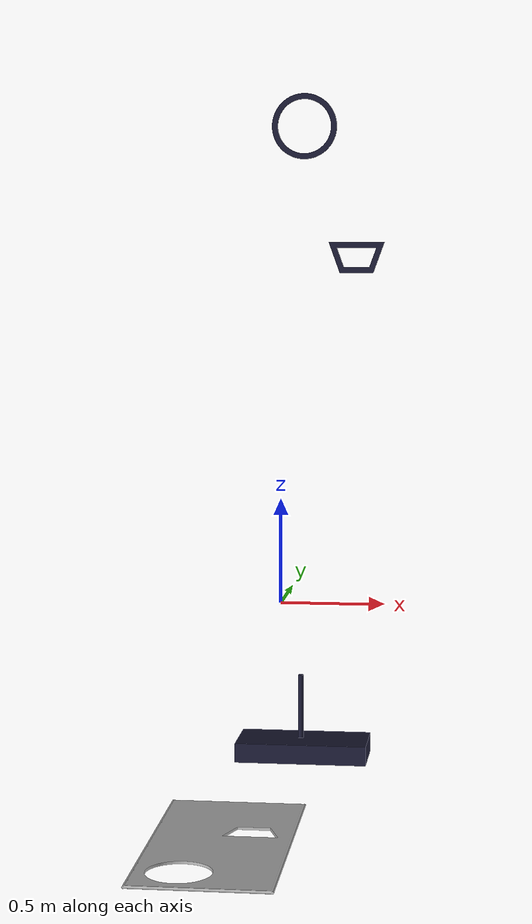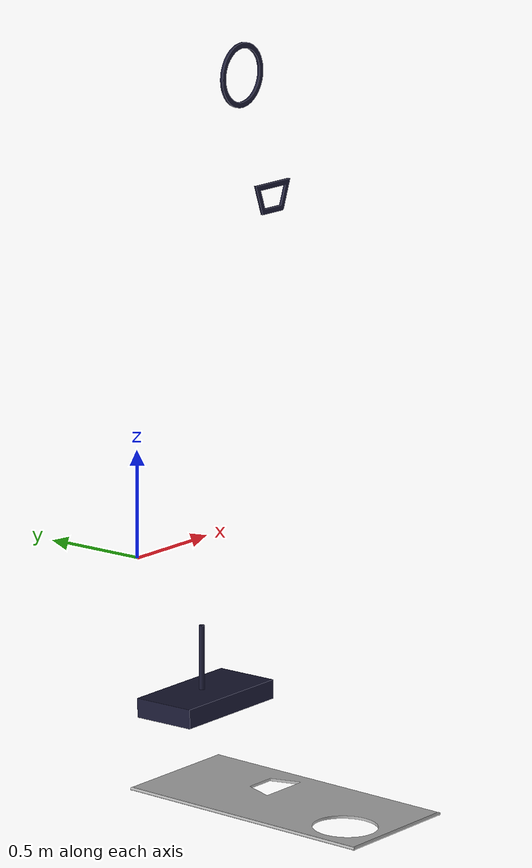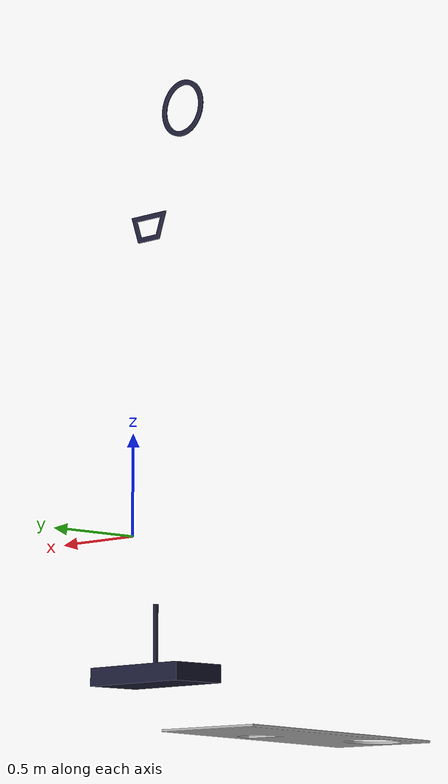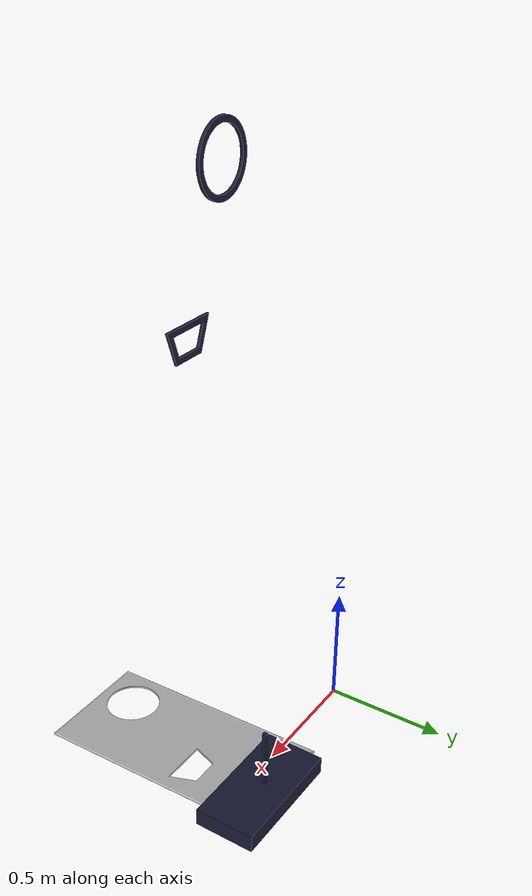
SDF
<?xml version="1.0" encoding="utf-8"?>
<sdf version="1.6">
  <model name="Shootout_color">
    <static>true</static>
    <link name="base_link">
      <collision name="body_collision">
        <geometry>
            <mesh>
                <uri>model://props_gazebo/models/target/meshes/S2_collision.dae</uri>
                <scale>0.001 0.001 0.001</scale>
            </mesh>
        </geometry>
      </collision>

        <visual name="base_link">
            <pose>0.0693 0.1796 -0.4599 0 0 0</pose>
            <geometry>
                <mesh>
                    <uri>model://props_gazebo/models/target/meshes/S2_base.dae</uri>
                    <scale>0.001 0.001 0.001</scale>
                </mesh>
            </geometry>
            <material> <!-- Base material -->
                <ambient>0.1 0.1 0.1 1</ambient>
                <diffuse>0.1 0.1 0.2 1</diffuse>
                <specular>0 0 0 0</specular>
                <emissive>0 0 0 1</emissive>
            </material> <!-- Base material -->
        </visual>

        <visual name="marco_link">
        <pose>-0.238325677191784 -0.176250476814231 -0.455158299357056 1.57526740840593 0 0</pose>
            <geometry>
            <mesh>
                <uri>model://props_gazebo/models/target/meshes/S2_marco.dae</uri>
                <scale>0.001 0.001 0.001</scale>
            </mesh>
            </geometry>
            <material>
                <script>
                    <uri>model://target/materials/scripts</uri>
                    <uri>model://target/materials/textures</uri>
                    <name>Gangster</name>
                </script>
            </material>
        </visual>

        <visual name="figures_link">
            <pose>0.19331 -0.0008988 1.0302 0 0 0</pose>
            <geometry>
            <mesh>
                <uri>model://props_gazebo/models/target/meshes/S2_figuras.dae</uri>
                <scale>0.001 0.001 0.001</scale>
            </mesh>
            </geometry>
            <material> <!-- Base material -->
                <ambient>0.1 0.1 0.1 1</ambient>
                <diffuse>0.1 0.1 0.2 1</diffuse>
                <specular>0 0 0 0</specular>
                <emissive>0 0 0 1</emissive>
            </material> <!-- Base material -->
        </visual>

    </link>
  </model>
</sdf>
